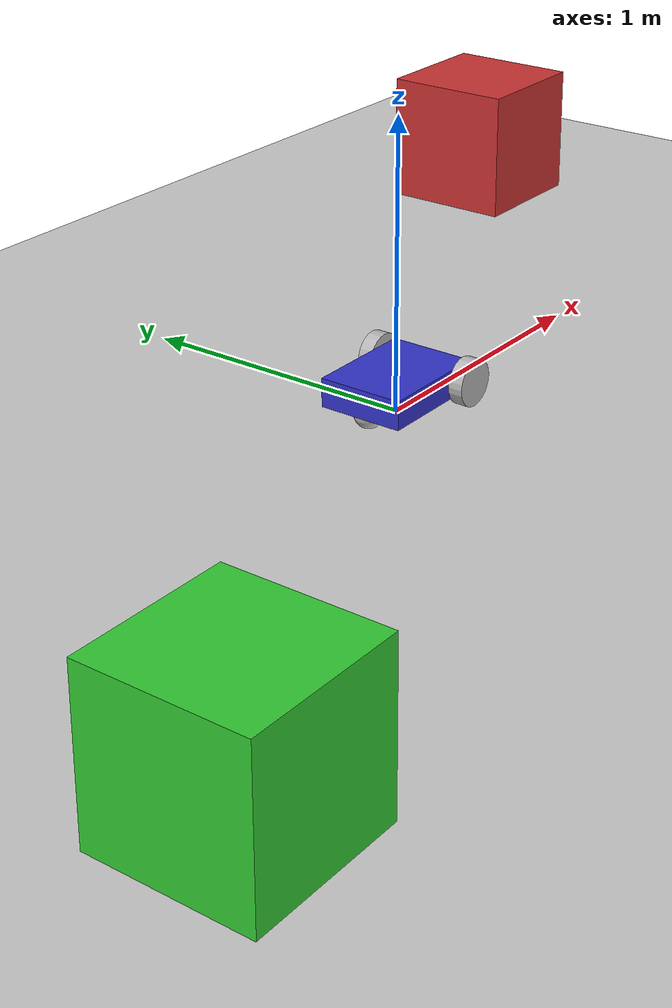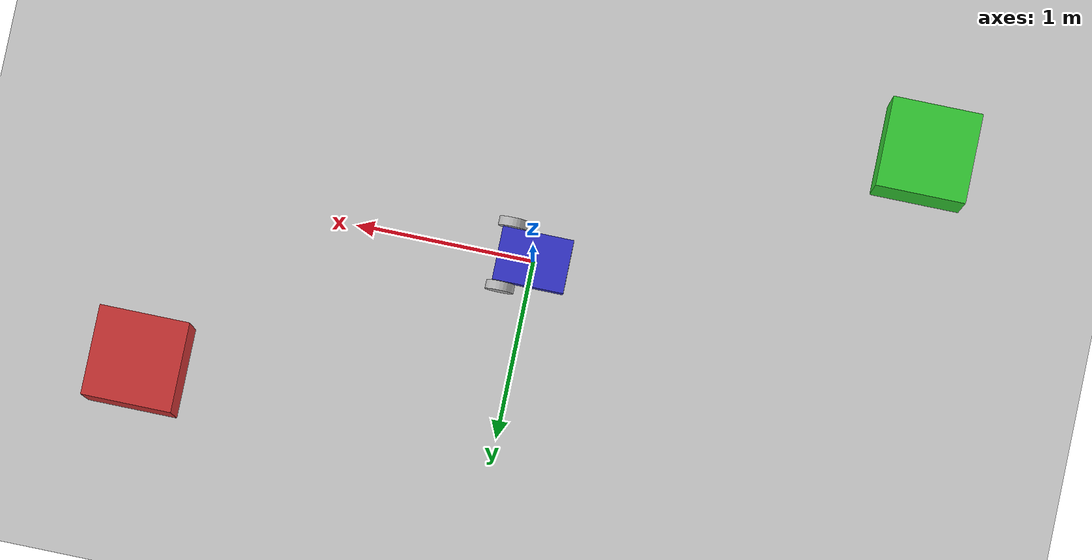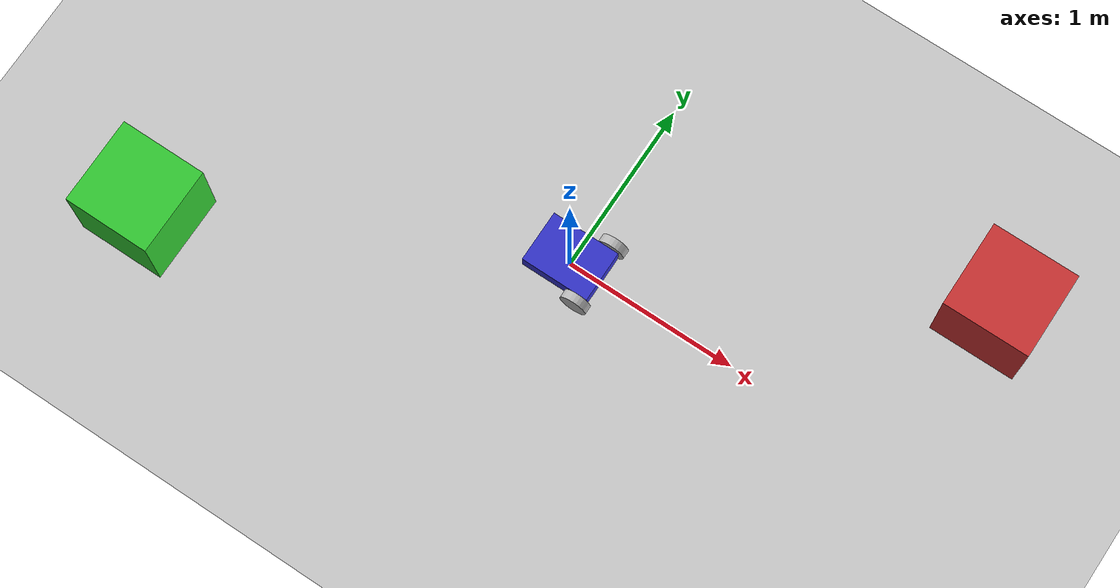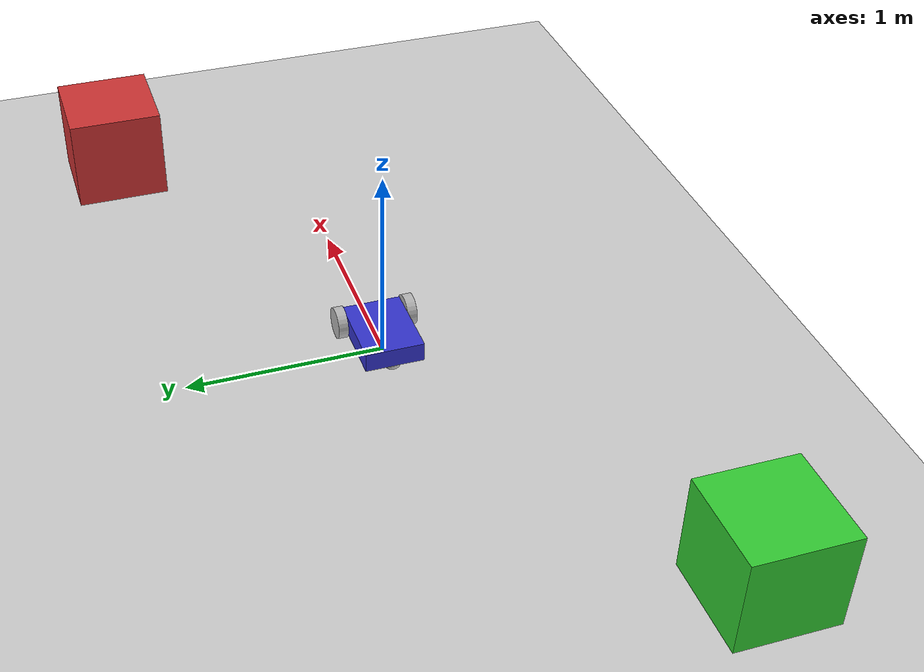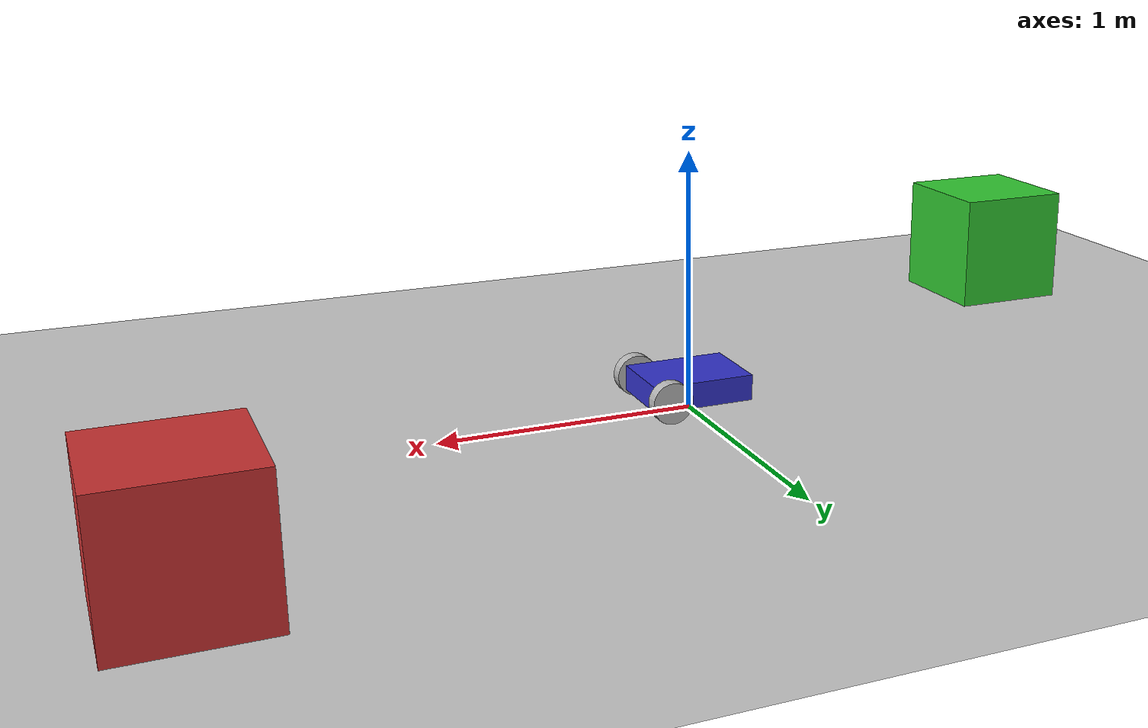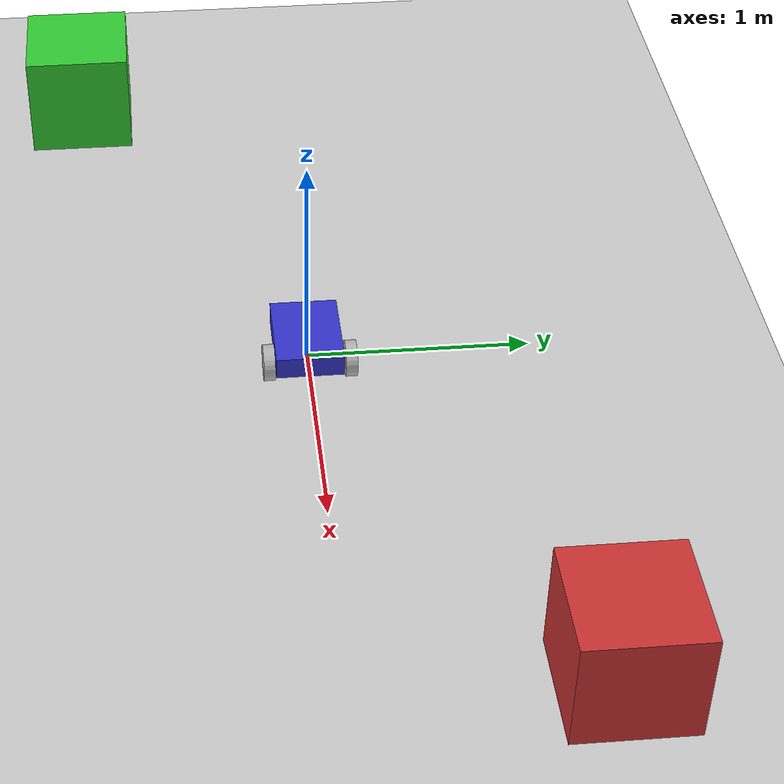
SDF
<sdf version="1.9">
 <world name="minimal_world">
  <gravity>0 0 -9.8</gravity>
  <light type="directional" name="sun">
   <pose>0 0 10 0 0 0</pose>
   <diffuse>0.8 0.8 0.8 1</diffuse>
   <specular>0.2 0.2 0.2 1</specular>
   <direction>-0.5 0.1 -0.9</direction>
  </light>
  <model name="ground_plane">
   <static>true</static>
   <link name="link">
    <collision name="collision">
     <geometry><plane><normal>0 0 1</normal><size>50 50</size></plane></geometry>
    </collision>
    <visual name="visual">
     <geometry><plane><normal>0 0 1</normal><size>50 50</size></plane></geometry>
     <material><ambient>0.8 0.8 0.8 1</ambient><diffuse>0.8 0.8 0.8 1</diffuse></material>
    </visual>
   </link>
  </model>
  <model name="diff_robot">
   <pose>0 0 0.1 0 0 0</pose>
   <link name="base_link">
    <inertial><mass>5.0</mass><inertia><ixx>0.1</ixx><iyy>0.1</iyy><izz>0.1</izz></inertia></inertial>
    <collision name="collision"><geometry><box><size>0.4 0.3 0.1</size></box></geometry></collision>
    <visual name="visual">
     <geometry><box><size>0.4 0.3 0.1</size></box></geometry>
     <material><ambient>0.2 0.2 0.8 1</ambient><diffuse>0.2 0.2 0.8 1</diffuse></material>
    </visual>
   </link>
   <link name="left_wheel">
    <pose>0.15 0.18 0 1.5707 0 0</pose>
    <inertial><mass>1.0</mass></inertial>
    <collision name="collision">
     <geometry><cylinder><radius>0.08</radius><length>0.05</length></cylinder></geometry>
    </collision>
    <visual name="visual">
     <geometry><cylinder><radius>0.08</radius><length>0.05</length></cylinder></geometry>
    </visual>
   </link>
   <link name="right_wheel">
    <pose>0.15 -0.18 0 1.5707 0 0</pose>
    <inertial><mass>1.0</mass></inertial>
    <collision name="collision">
     <geometry><cylinder><radius>0.08</radius><length>0.05</length></cylinder></geometry>
    </collision>
    <visual name="visual">
     <geometry><cylinder><radius>0.08</radius><length>0.05</length></cylinder></geometry>
    </visual>
   </link>
   <link name="caster">
    <pose>-0.15 0 -0.05 0 0 0</pose>
    <inertial><mass>0.5</mass></inertial>
    <collision name="collision"><geometry><sphere><radius>0.05</radius></sphere></geometry></collision>
    <visual name="visual"><geometry><sphere><radius>0.05</radius></sphere></geometry></visual>
   </link>
   <joint name="left_wheel_joint" type="revolute">
    <parent>base_link</parent>
    <child>left_wheel</child>
    <axis><xyz>0 1 0</xyz></axis>
   </joint>
   <joint name="right_wheel_joint" type="revolute">
    <parent>base_link</parent>
    <child>right_wheel</child>
    <axis><xyz>0 1 0</xyz></axis>
   </joint>
   <joint name="caster_joint" type="ball"><parent>base_link</parent><child>caster</child></joint>
  </model>
  <model name="box1">
   <pose>2 1 0.25 0 0 0</pose>
   <link name="link">
    <collision name="collision"><geometry><box><size>0.5 0.5 0.5</size></box></geometry></collision>
    <visual name="visual">
     <geometry><box><size>0.5 0.5 0.5</size></box></geometry>
     <material><ambient>0.8 0.2 0.2 1</ambient></material>
    </visual>
   </link>
  </model>
  <model name="box2">
   <pose>-2 -1 0.25 0 0 0</pose>
   <link name="link">
    <collision name="collision"><geometry><box><size>0.5 0.5 0.5</size></box></geometry></collision>
    <visual name="visual">
     <geometry><box><size>0.5 0.5 0.5</size></box></geometry>
     <material><ambient>0.2 0.8 0.2 1</ambient></material>
    </visual>
   </link>
  </model>
 </world>
</sdf>
